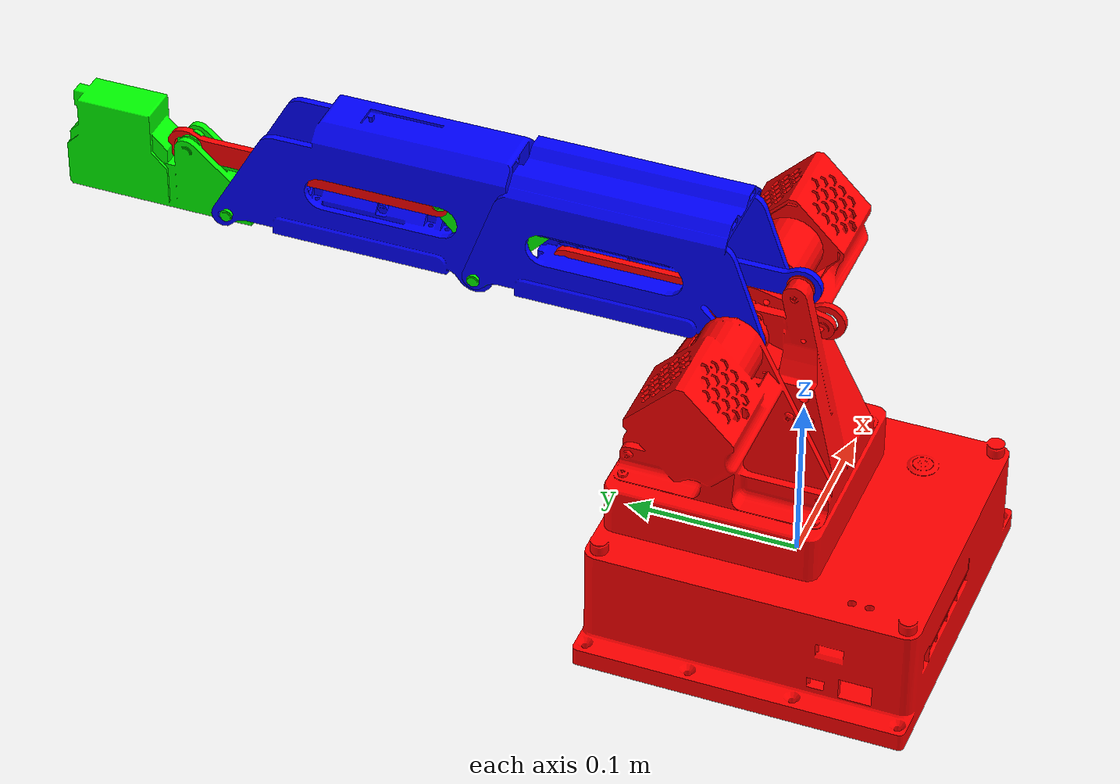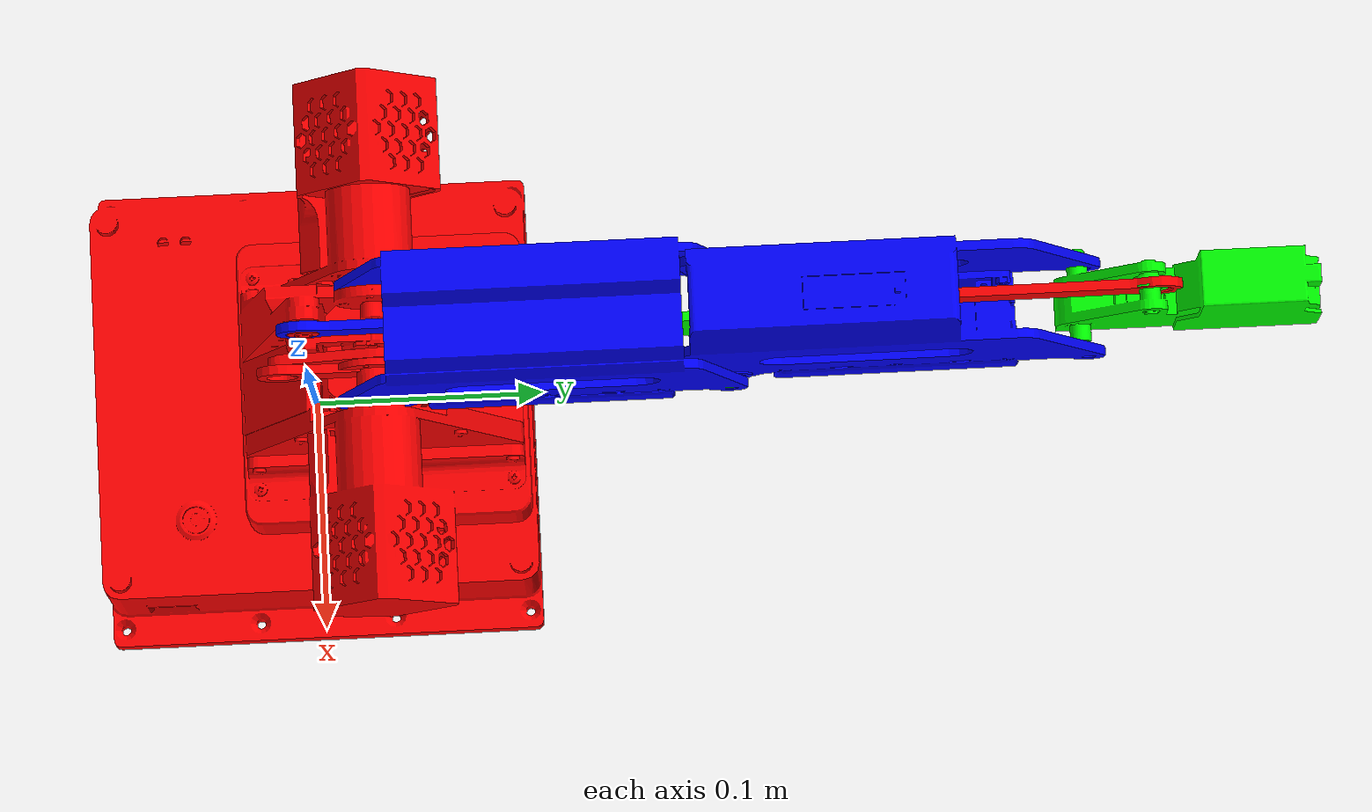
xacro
<?xml version="1.0"?>
<robot xmlns:xacro="http://www.ros.org/wiki/xacro" name="rectangle_robot">

  <!-- Параметры -->
  <xacro:property name="width" value="0.14993"/>
  <xacro:property name="height" value="0.03992"/>
  <xacro:property name="link_radius" value="0.005"/>
  <xacro:property name="height_2" value="0.19001"/>
  <xacro:property name="box_size" value="0.4"/>
  <xacro:property name="width_top" value="1.5"/>
  <xacro:property name="triangle" value="0.04"/>
    <xacro:property name="triangle2" value="0.02828"/>
  <!-- Материалы -->
  <material name="red"><color rgba="1 0 0 1"/></material>
  <material name="blue"><color rgba="0 0 1 1"/></material>
  <material name="green"><color rgba="0 1 0 1"/></material>
  <material name="ghost"><color rgba="0.5 0.5 0.5 0.3"/></material>

  <!-- Базовое звено (только parent!) -->
  <link name="base_link">
    <collision>
      <geometry><box size="0.202 0.191 0.0668"/></geometry>
    </collision>
    <visual>
      <geometry><mesh filename="package://hr300_description/meshes/stl/base.STL" scale="0.001 0.001 0.001"/></geometry>
      <origin xyz="0.1145 0.0182 -0.3234" rpy="0 0 3.14"/>
      <material name="red"/>
    </visual>
  </link>

  <link name="rev_base_link">
    <collision>
      <geometry><box size="0.124 0.124 0.10476"/></geometry>
      <origin xyz="0 0 0" rpy="0 0 0"/>
    </collision>
    <visual>
      <geometry><mesh filename="package://hr300_description/meshes/stl/link1.STL" scale="0.001 0.001 0.001"/></geometry>
      <origin xyz="0.114097 -0.015 -0.41038" rpy="0 0 3.14"/>
      <material name="red"/>
    </visual>
  </link>

  <joint name="joint1" type="revolute">
    <parent link="base_link"/>
    <child link="rev_base_link"/>
    <origin xyz="0 0.0335 0.08578" rpy="0 0 0"/>
    <axis xyz="0 0 1"/>
    <limit lower="-2.14" upper="2.14" effort="10" velocity="1"/>
  </joint>

  <!-- Основная цепь (3 реальных звена) -->
  <link name="link1">
    <collision>
      <geometry><cylinder length="${height}" radius="${link_radius}"/></geometry>
      <origin xyz="0 0 ${height/2}" rpy="0 0 0"/>
    </collision>
    <visual>
      <geometry><mesh filename="package://hr300_description/meshes/stl/arm1.STL" scale="0.001 0.001 0.001"/></geometry>
      <origin xyz="-0.1056 0.0113 -0.48" rpy="0 0 0"/>
      <material name="red"/>
    </visual>
  </link>

  <link name="link2">
    <collision>
      <geometry><cylinder length="${width}" radius="${link_radius}"/></geometry>
      <origin xyz="0 ${width/2} 0" rpy="1.57 0 0"/>
    </collision>
    <visual>
      <geometry><mesh filename="package://hr300_description/meshes/stl/arm2.STL" scale="0.001 0.001 0.001"/></geometry>
      <origin xyz="0.123 0.014 -0.509554" rpy="0 0 3.14"/>
      <material name="red"/>
    </visual>
  </link>

  <link name="link3">
    <collision>
      <geometry><cylinder length="${height_2}" radius="${link_radius}"/></geometry>
      <origin xyz="0 0 -${height_2/2-height}" rpy="3.14 0 0"/>
    </collision>
    <visual>
      <geometry><mesh filename="package://hr300_description/meshes/stl/link3.STL" scale="0.001 0.001 0.001"/></geometry>
      <origin xyz="0.11 ${-0.165} ${-0.5195+height}" rpy="0 0 3.14"/>
      <material name="blue"/>
    </visual>
  </link>

  <!-- Соединения основной цепи -->
  <joint name="joint3" type="revolute">
    <parent link="link4"/>
    <child link="mimic_link_new"/>
    <origin xyz="0 0 0" rpy="1.57 0 0"/>
    <axis xyz="1 0 0"/>
    <limit lower="-3.14" upper="3.14" effort="10" velocity="1"/>
  </joint>

  <link name="mimic_link_new">
    <collision>
      <geometry><box size="0.001 0.001 0.001"/></geometry>
      <origin xyz="0 0 0" rpy="0 0 0"/>
    </collision>
  </link>

  <joint name="mimic_joint_new" type="revolute">
    <parent link="mimic_link_new"/>
    <child link="link1"/>
    <origin xyz="0 0 0" rpy="0 0 0"/>
    <axis xyz="1 0 0"/>
    <limit lower="-3.14" upper="3.14" effort="10" velocity="1"/>
    <mimic joint="joint2" multiplier="-1" offset="0"/>
  </joint>

  <link name="mimic_link_new_2">
    <collision>
      <geometry><box size="0.001 0.001 0.001"/></geometry>
      <origin xyz="0 0 0" rpy="0 0 0"/>
    </collision>
  </link>

  <joint name="mimic_joint_new_2" type="revolute">
    <parent link="link1"/>
    <child link="mimic_link_new_2"/>
    <origin xyz="0 0 ${height}" rpy="0 0 0"/>
    <axis xyz="1 0 0"/>
    <limit lower="-3.14" upper="3.14" effort="10" velocity="1"/>
    <mimic joint="joint2" multiplier="1" offset="0"/>
  </joint>

  <joint name="joint2_new" type="revolute">
    <parent link="mimic_link_new_2"/>
    <child link="link2"/>
    <origin xyz="0 0 0" rpy="-1.57 0 0"/>
    <axis xyz="1 0 0"/>
    <limit lower="-3.14" upper="3.14" effort="10" velocity="1"/>
    <mimic joint="joint3" multiplier="-1" offset="0"/>
  </joint>

  <link name="mimic_link_new_3">
    <collision>
      <geometry><box size="0.001 0.001 0.001"/></geometry>
      <origin xyz="0 0 0" rpy="0 0 0"/>
    </collision>
  </link>

  <joint name="mimic_joint_new_3" type="revolute">
    <parent link="link4"/>
    <child link="mimic_link_new_3"/>
    <origin xyz="0 ${width} 0" rpy="0 0 0"/>
    <axis xyz="1 0 0"/>
    <limit lower="-3.14" upper="3.14" effort="10" velocity="1"/>
    <mimic joint="joint2" multiplier="-1" offset="0"/>
  </joint>

  <joint name="joint3_new" type="revolute">
    <parent link="mimic_link_new_3"/>
    <child link="link3"/>
    <origin xyz="0 0 0" rpy="1.57 0 0"/>
    <axis xyz="1 0 0"/>
    <limit lower="-3.14" upper="3.14" effort="10" velocity="1"/>
    <mimic joint="joint3" multiplier="1" offset="0"/>

  </joint>

  <link name="link4">
    <collision>
      <geometry><cylinder length="${width}" radius="${link_radius}"/></geometry>
      <origin xyz="0 ${width/2} 0" rpy="1.57 0 0"/>
    </collision>
    <visual>
      <geometry><mesh filename="package://hr300_description/meshes/stl/link2.STL" scale="0.001 0.001 0.001"/></geometry>
      <origin xyz="0.11 -0.015 -0.48" rpy="0 0 3.14"/>
      <material name="blue"/>
    </visual>
  </link>

  <joint name="joint2" type="revolute">
    <parent link="rev_base_link"/>
    <child link="link4"/>
    <origin xyz="0.004 0 0.06911" rpy="0 0 0"/>
    <axis xyz="1 0 0"/>
    <limit lower="-3.14" upper="3.14" effort="10" velocity="1"/>
  </joint>

  <link name="link_top_1">
    <collision>
      <geometry><cylinder length="${width}" radius="${link_radius}"/></geometry>
      <origin xyz="0 ${width/2} 0" rpy="1.57 0 0"/>
    </collision>
    <visual>
      <geometry><mesh filename="package://hr300_description/meshes/stl/arm2.STL" scale="0.001 0.001 0.001"/></geometry>
      <origin xyz="0.114 0.0127 -0.508" rpy="0 0 3.14"/>
      <material name="blue"/>
    </visual>
  </link>

  <joint name="joint_top_1" type="revolute">
    <parent link="rev_base_link"/>
    <child link="link_top_1"/>
    <origin xyz="-0.00015 -0.02829 0.09739" rpy="0 0 0"/>
    <axis xyz="1 0 0"/>
    <limit lower="-3.14" upper="3.14" effort="10" velocity="1"/>
    <mimic joint="joint2" multiplier="1" offset="0"/>
  </joint>

  <link name="triangle_left_link">
    <collision>
      <geometry><cylinder length="${triangle}" radius="${link_radius}"/></geometry>
      <origin xyz="0 0.0141421 -0.0141421" rpy="0.785 0 0"/>
    </collision>
    <visual>
      <geometry><mesh filename="package://hr300_description/meshes/stl/lokot.STL" scale="0.001 0.001 0.001"/></geometry>
      <origin xyz="-0.11 0.189 -0.508" rpy="0 0 0"/>
      <material name="green"/>
    </visual>
  </link>

  <joint name="triangle_left_joint" type="revolute">
    <parent link="link_top_1"/>
    <child link="triangle_left_link"/>
    <origin xyz="0 ${width} 0" rpy="0 0 0"/>
    <axis xyz="1 0 0"/>
    <limit lower="-3.14" upper="3.14" effort="10" velocity="1"/>
    <mimic joint="joint2" multiplier="-1" offset="0"/>
  </joint>

  <link name="triangle_right_link">
    <collision>
      <geometry><cylinder length="${triangle}" radius="${link_radius}"/></geometry>
      <origin xyz="0 -0.0141421 -0.0141421" rpy="-0.785 0 0"/>
    </collision>
  </link>

  <joint name="triangle_right_joint" type="fixed">
    <parent link="triangle_left_link"/>
    <child link="triangle_right_link"/>
    <origin xyz="0 0.05657 0" rpy="0 0 0"/>
    <axis xyz="1 0 0"/>
    <limit lower="-3.14" upper="3.14" effort="10" velocity="1"/>
  </joint>

  <link name="triangle_top_link">
    <collision>
      <geometry><cylinder length="0.05657" radius="${link_radius}"/></geometry>
      <origin xyz="0 0.028285 0" rpy="1.57 0 0"/>
    </collision>
  </link>

  <joint name="triangle_top_joint" type="fixed">
    <parent link="triangle_left_link"/>
    <child link="triangle_top_link"/>
    <origin xyz="0 0 0" rpy="0 0 0"/>
    <axis xyz="1 0 0"/>
    <limit lower="-3.14" upper="3.14" effort="10" velocity="1"/>
  </joint>

  <link name="mimic_link_1">
    <collision>
      <geometry><box size="0.001 0.001 0.001"/></geometry>
      <origin xyz="0 0 0" rpy="0 0 0"/>
    </collision>
  </link>

  <joint name="mimic_joint" type="revolute">
    <parent link="triangle_right_link"/>
    <child link="mimic_link_1"/>
    <origin xyz="0 0 0" rpy="0 0 0"/>
    <axis xyz="1 0 0"/>
    <limit lower="-3.14" upper="3.14" effort="10" velocity="1"/>
    <mimic joint="joint3" multiplier="1" offset="0"/>
  </joint>

  <link name="link_top_2">
    <collision>
      <geometry><cylinder length="${width}" radius="${link_radius}"/></geometry>
      <origin xyz="0 0 -${width/2} " rpy="0 0 0"/>
    </collision>
    <visual>
      <geometry><mesh filename="package://hr300_description/meshes/stl/arm2.STL" scale="0.001 0.001 0.001"/></geometry>
      <origin xyz="-0.12 -0.51 -0.135" rpy="-1.57 0 0"/>
      <material name="red"/>
    </visual>
  </link>

  <joint name="joint_top_2" type="fixed">
    <parent link="mimic_link_1"/>
    <child link="link_top_2"/>
    <origin xyz="0 0 0" rpy="1.57 0 0"/>
    <axis xyz="1 0 0"/>
    <limit lower="-3.14" upper="3.14" effort="10" velocity="1"/>
  </joint>

  <link name="mimic_link_2">
    <collision>
      <geometry><box size="0.001 0.001 0.001"/></geometry>
      <origin xyz="0 0 0" rpy="0 0 0"/>
    </collision>
  </link>

  <joint name="mimic_joint_2" type="revolute">
    <parent link="link_top_2"/>
    <child link="mimic_link_2"/>
    <origin xyz="0 0 -${width}" rpy="-1.57 0 0"/>
    <axis xyz="1 0 0"/>
    <limit lower="-3.14" upper="3.14" effort="10" velocity="1"/>
    <mimic joint="joint3" multiplier="-1" offset="0"/>
  </joint>

  <link name="triangle2_right_link">
    <collision>
      <geometry><cylinder length="${triangle2}" radius="${link_radius}"/></geometry>
      <origin xyz="0 0 -${triangle2/2}" rpy="0 0 0"/>
    </collision>
    <visual>
      <geometry><mesh filename="package://hr300_description/meshes/stl/link4.STL" scale="0.001 0.001 0.001"/></geometry>
      <origin xyz="0.112 ${-0.045-width} ${-0.208-width}" rpy="0 0 3.14"/>
      <material name="green"/>
    </visual>
  </link>

  <joint name="triangle2_right_joint" type="fixed">
    <parent link="mimic_link_2"/>
    <child link="triangle2_right_link"/>
    <origin xyz="0 0 0" rpy="0 0 0"/>
    <axis xyz="1 0 0"/>
    <limit lower="-3.14" upper="3.14" effort="10" velocity="1"/>

  </joint>

  <link name="mimic_link_3">
    <collision>
      <geometry><box size="0.001 0.001 0.001"/></geometry>
      <origin xyz="0 0 0" rpy="0 0 0"/>
      <material name="green"/>
    </collision>
  </link>

  <joint name="mimic_joint_3" type="revolute">
    <parent link="link3"/>
    <child link="mimic_link_3"/>
    <origin xyz="0 0 -${height_2}" rpy="0 0 0"/>
    <axis xyz="1 0 0"/>
    <limit lower="-3.14" upper="3.14" effort="10" velocity="1"/>
    <mimic joint="joint3" multiplier="-1" offset="0"/>
  </joint>

  <link name="triangle2_bottom_link">
    <collision>
      <geometry><cylinder length="${triangle2}" radius="${link_radius}"/></geometry>
      <origin xyz="0 ${triangle2/2} 0" rpy="1.57 0 0"/>
    </collision>
  </link>

  <joint name="triangle2_bottom_joint" type="fixed">
    <parent link="mimic_link_3"/>  <xacro:property name="triangle" value="0.282843"/>
    <child link="triangle2_bottom_link"/>
    <origin xyz="0 0 0" rpy="0 0 0"/>
    <axis xyz="1 0 0"/>
    <limit lower="-3.14" upper="3.14" effort="10" velocity="1"/>

  </joint>

   <link name="triangle2_gip_link">
    <collision>
      <geometry><cylinder length="0.04" radius="${link_radius}"/></geometry>
      <origin xyz="0 -0.0141421 -0.0141421" rpy="-0.785 0 0"/>
    </collision>
  </link>

  <joint name="triangle2_gip_joint" type="fixed">
    <parent link="triangle2_right_link"/>
    <child link="triangle2_gip_link"/>
    <origin xyz="0 0 0" rpy="0 0 0"/>
    <axis xyz="1 0 0"/>
    <limit lower="-3.14" upper="3.14" effort="10" velocity="1"/>
  </joint>

  <link name="link_end">
    <collision>
      <geometry><cylinder length="${triangle2}" radius="${link_radius}"/></geometry>
      <origin xyz="0 ${triangle2/2} 0" rpy="1.57 0 0"/>
    </collision>
  </link>

  <joint name="joint_end" type="fixed">
    <parent link="triangle2_bottom_link"/>  <xacro:property name="triangle" value="0.282843"/>
    <child link="link_end"/>
    <origin xyz="0 ${triangle2} 0" rpy="0 0 0"/>
    <axis xyz="1 0 0"/>
    <limit lower="-3.14" upper="3.14" effort="10" velocity="1"/>
  </joint>

  <!-- Firmware joint 4: wrist-servo orientation at the tool flange. -->
  <link name="flange_dummy_link"/>

  <joint name="joint4" type="revolute">
    <parent link="link_end"/>
    <child link="flange_dummy_link"/>
    <origin xyz="0 0 0" rpy="0 0 0"/>
    <axis xyz="0 1 0"/>
    <limit lower="0.0" upper="3.14159265359" effort="10" velocity="2"/>
  </joint>

</robot>
